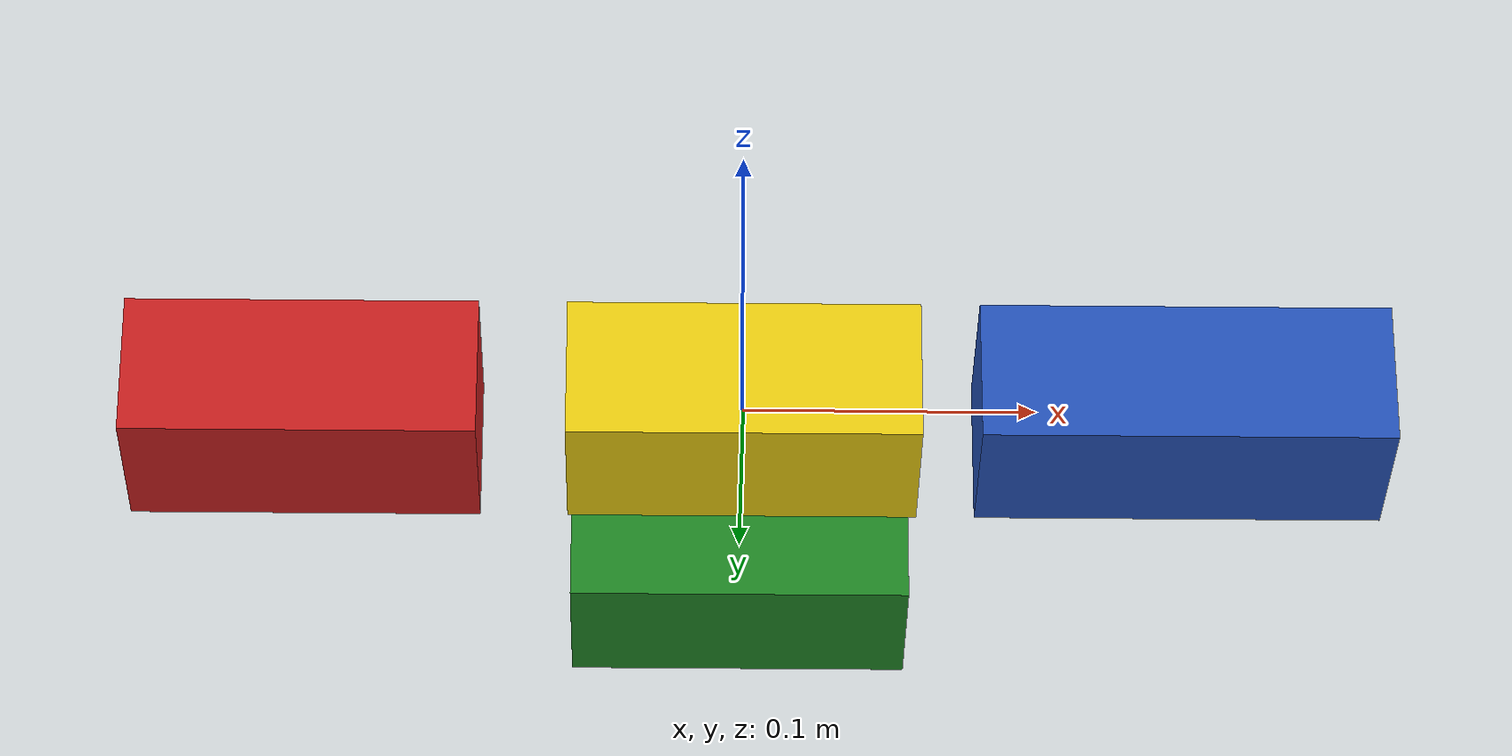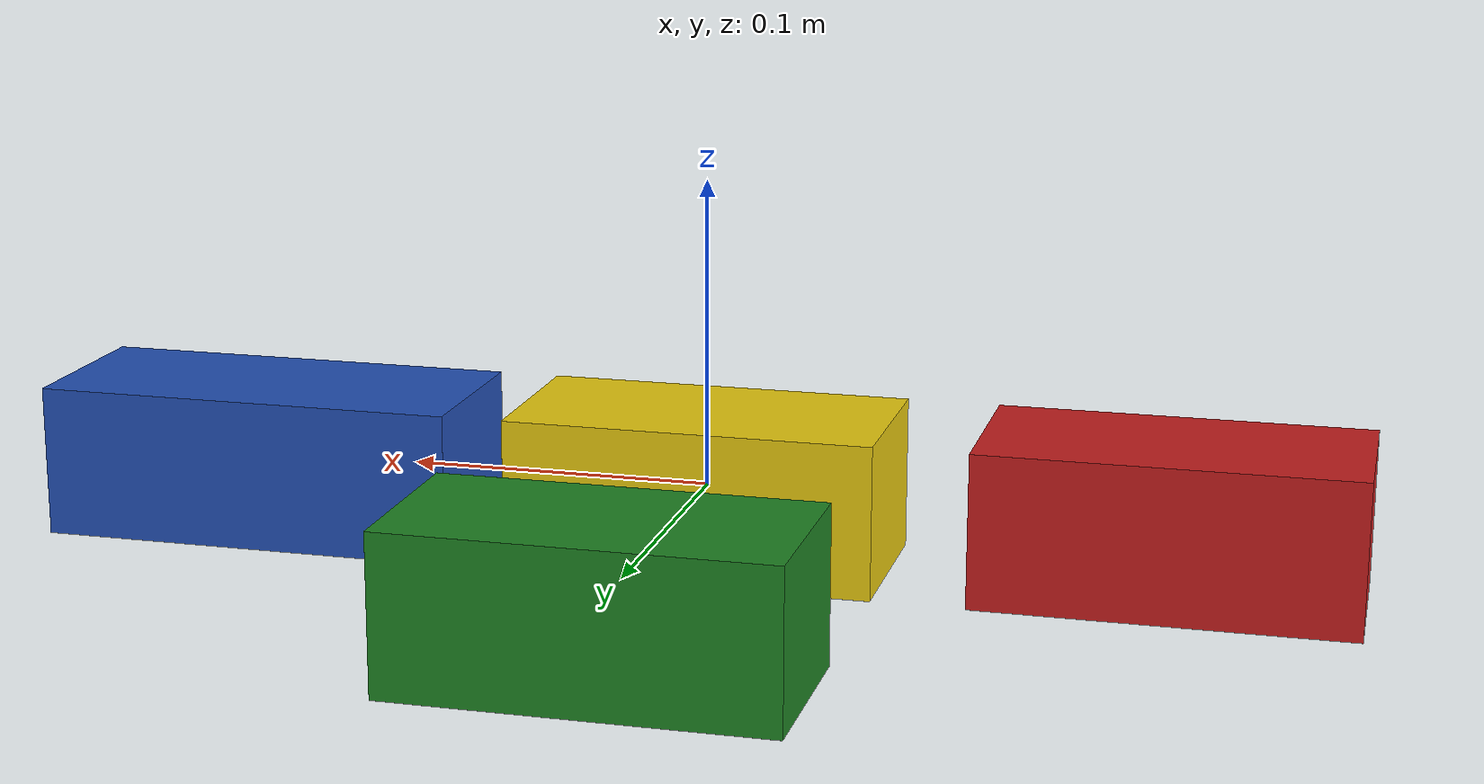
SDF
<?xml version="1.0" ?>
<sdf version="1.9">
  <model name="traffic_jam">
    <link name="link">
      <visual name="car_yellow">
        <geometry><box><size>0.12 0.06 0.05</size></box></geometry>
        <material><ambient>0.92 0.80 0.06</ambient><diffuse>0.92 0.80 0.06</diffuse><shader type="pixel"/></material>
      </visual>
      <visual name="car_blue">
        <pose>0.15 0 0 0 0 0</pose>
        <geometry><box><size>0.14 0.06 0.05</size></box></geometry>
        <material><ambient>0.14 0.32 0.72</ambient><diffuse>0.14 0.32 0.72</diffuse><shader type="pixel"/></material>
      </visual>
      <visual name="car_red">
        <pose>-0.15 0 0 0 0 0</pose>
        <geometry><box><size>0.12 0.06 0.05</size></box></geometry>
        <material><ambient>0.78 0.12 0.12</ambient><diffuse>0.78 0.12 0.12</diffuse><shader type="pixel"/></material>
      </visual>
      <visual name="car_green">
        <pose>0 0.12 0 0 0 0</pose>
        <geometry><box><size>0.12 0.06 0.05</size></box></geometry>
        <material><ambient>0.12 0.52 0.14</ambient><diffuse>0.12 0.52 0.14</diffuse><shader type="pixel"/></material>
      </visual>
      <collision name="collision">
        <geometry><box><size>0.4 0.25 0.05</size></box></geometry>
      </collision>
    </link>
  </model>
</sdf>
